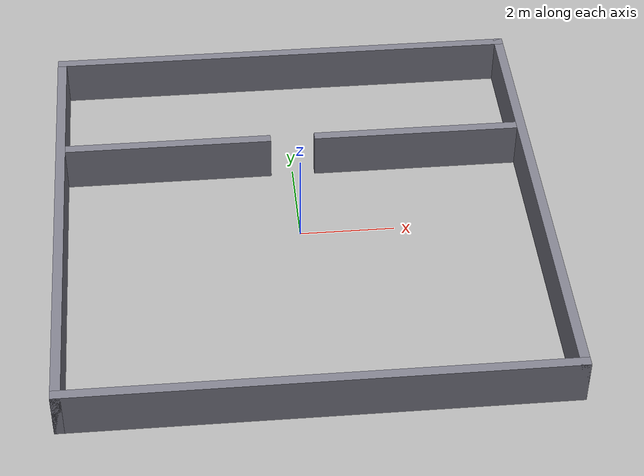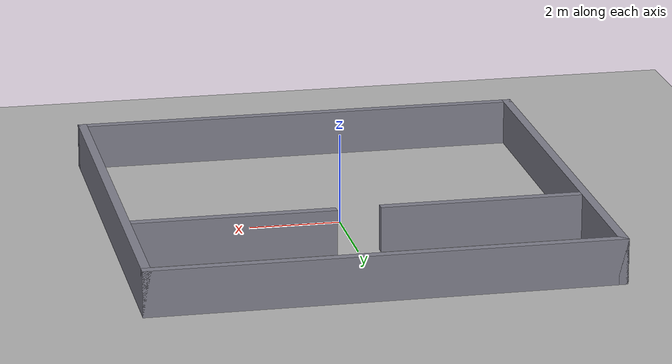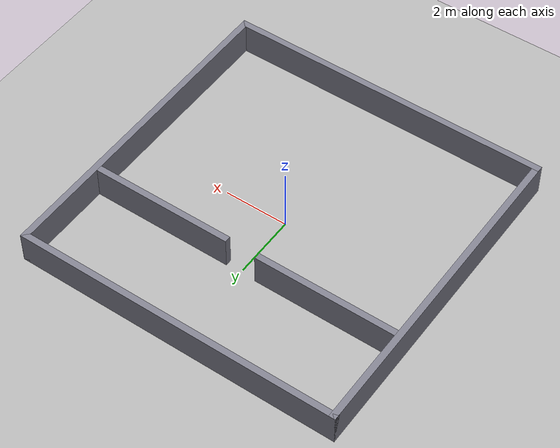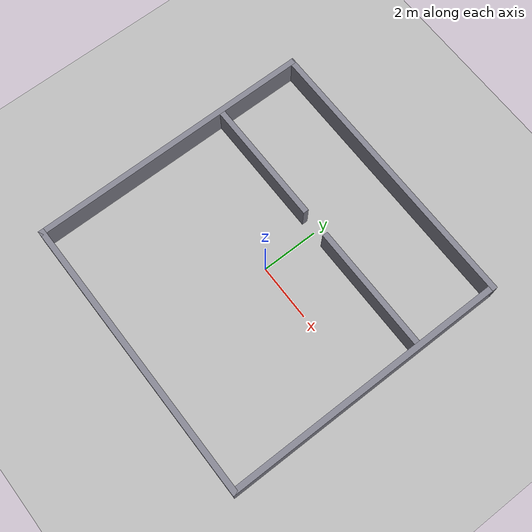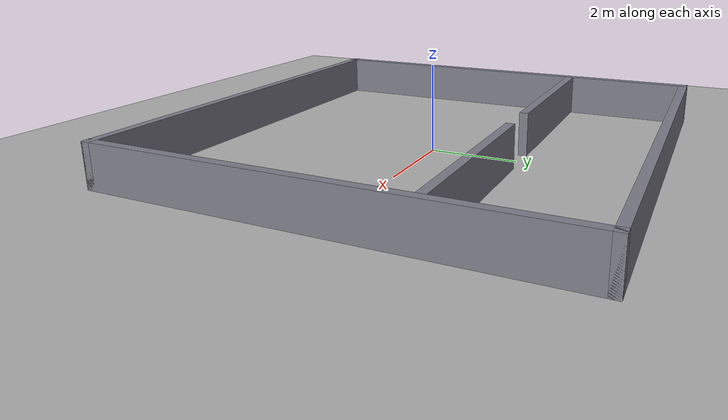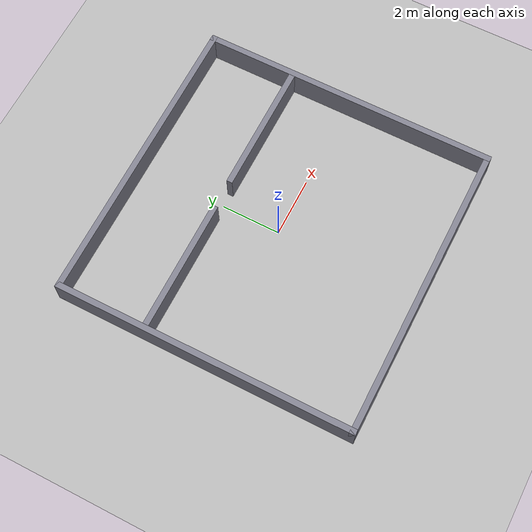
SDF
<?xml version="1.0"?>
<sdf version="1.10">
  <world name="scenario_95">
    <physics name="fast" type="ignored">
      <max_step_size>0.005</max_step_size>
      <real_time_factor>1.0</real_time_factor>
      <real_time_update_rate>200</real_time_update_rate>
    </physics>
    <plugin filename="gz-sim-physics-system" name="gz::sim::systems::Physics"/>
    <plugin filename="gz-sim-user-commands-system" name="gz::sim::systems::UserCommands"/>
    <plugin filename="gz-sim-scene-broadcaster-system" name="gz::sim::systems::SceneBroadcaster"/>
    <plugin filename="gz-sim-sensors-system" name="gz::sim::systems::Sensors">
      <render_engine>ogre2</render_engine>
    </plugin>
    <light type="directional" name="sun">
      <cast_shadows>false</cast_shadows>
      <pose>0 0 10 0 0 0</pose>
      <diffuse>0.9 0.9 0.9 1</diffuse>
      <direction>-0.5 0.2 -0.9</direction>
    </light>
    <model name="ground_plane">
      <static>true</static>
      <link name="link">
        <collision name="c"><geometry><plane><normal>0 0 1</normal><size>20 20</size></plane></geometry></collision>
        <visual name="v"><geometry><plane><normal>0 0 1</normal><size>20 20</size></plane></geometry>
          <material><ambient>0.7 0.7 0.7 1</ambient><diffuse>0.7 0.7 0.7 1</diffuse></material></visual>
      </link>
    </model>
    <model name="box_0">
      <static>true</static>
      <pose>0.0 5.0 0.5 0 0 0</pose>
      <link name="link">
        <collision name="c"><geometry><box><size>10.2 0.2 1.0</size></box></geometry></collision>
        <visual name="v"><geometry><box><size>10.2 0.2 1.0</size></box></geometry>
          <material><ambient>0.5 0.5 0.55 1</ambient><diffuse>0.5 0.5 0.55 1</diffuse></material></visual>
      </link>
    </model>
    <model name="box_1">
      <static>true</static>
      <pose>0.0 -5.0 0.5 0 0 0</pose>
      <link name="link">
        <collision name="c"><geometry><box><size>10.2 0.2 1.0</size></box></geometry></collision>
        <visual name="v"><geometry><box><size>10.2 0.2 1.0</size></box></geometry>
          <material><ambient>0.5 0.5 0.55 1</ambient><diffuse>0.5 0.5 0.55 1</diffuse></material></visual>
      </link>
    </model>
    <model name="box_2">
      <static>true</static>
      <pose>5.0 0.0 0.5 0 0 0</pose>
      <link name="link">
        <collision name="c"><geometry><box><size>0.2 10.2 1.0</size></box></geometry></collision>
        <visual name="v"><geometry><box><size>0.2 10.2 1.0</size></box></geometry>
          <material><ambient>0.5 0.5 0.55 1</ambient><diffuse>0.5 0.5 0.55 1</diffuse></material></visual>
      </link>
    </model>
    <model name="box_3">
      <static>true</static>
      <pose>-5.0 0.0 0.5 0 0 0</pose>
      <link name="link">
        <collision name="c"><geometry><box><size>0.2 10.2 1.0</size></box></geometry></collision>
        <visual name="v"><geometry><box><size>0.2 10.2 1.0</size></box></geometry>
          <material><ambient>0.5 0.5 0.55 1</ambient><diffuse>0.5 0.5 0.55 1</diffuse></material></visual>
      </link>
    </model>
    <model name="box_4">
      <static>true</static>
      <pose>-2.6875 2.0 0.5 0 0 0</pose>
      <link name="link">
        <collision name="c"><geometry><box><size>4.425000000000001 0.2 1.0</size></box></geometry></collision>
        <visual name="v"><geometry><box><size>4.425000000000001 0.2 1.0</size></box></geometry>
          <material><ambient>0.5 0.5 0.55 1</ambient><diffuse>0.5 0.5 0.55 1</diffuse></material></visual>
      </link>
    </model>
    <model name="box_5">
      <static>true</static>
      <pose>2.6875 2.0 0.5 0 0 0</pose>
      <link name="link">
        <collision name="c"><geometry><box><size>4.425000000000001 0.2 1.0</size></box></geometry></collision>
        <visual name="v"><geometry><box><size>4.425000000000001 0.2 1.0</size></box></geometry>
          <material><ambient>0.5 0.5 0.55 1</ambient><diffuse>0.5 0.5 0.55 1</diffuse></material></visual>
      </link>
    </model>
  </world>
</sdf>
